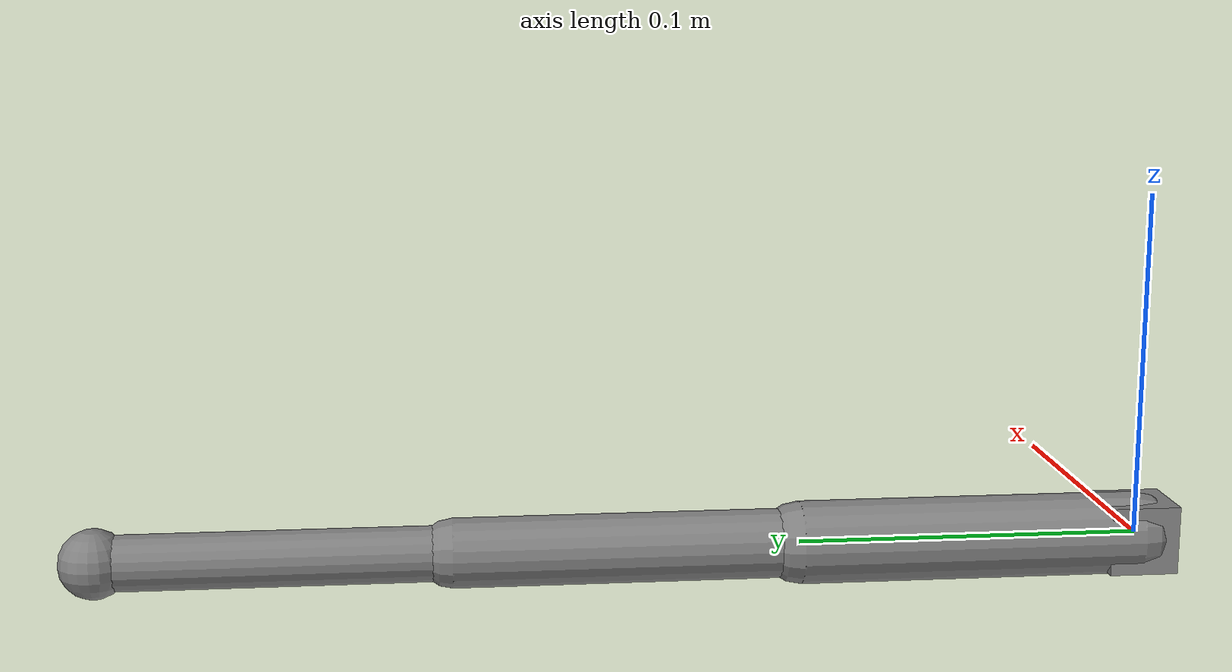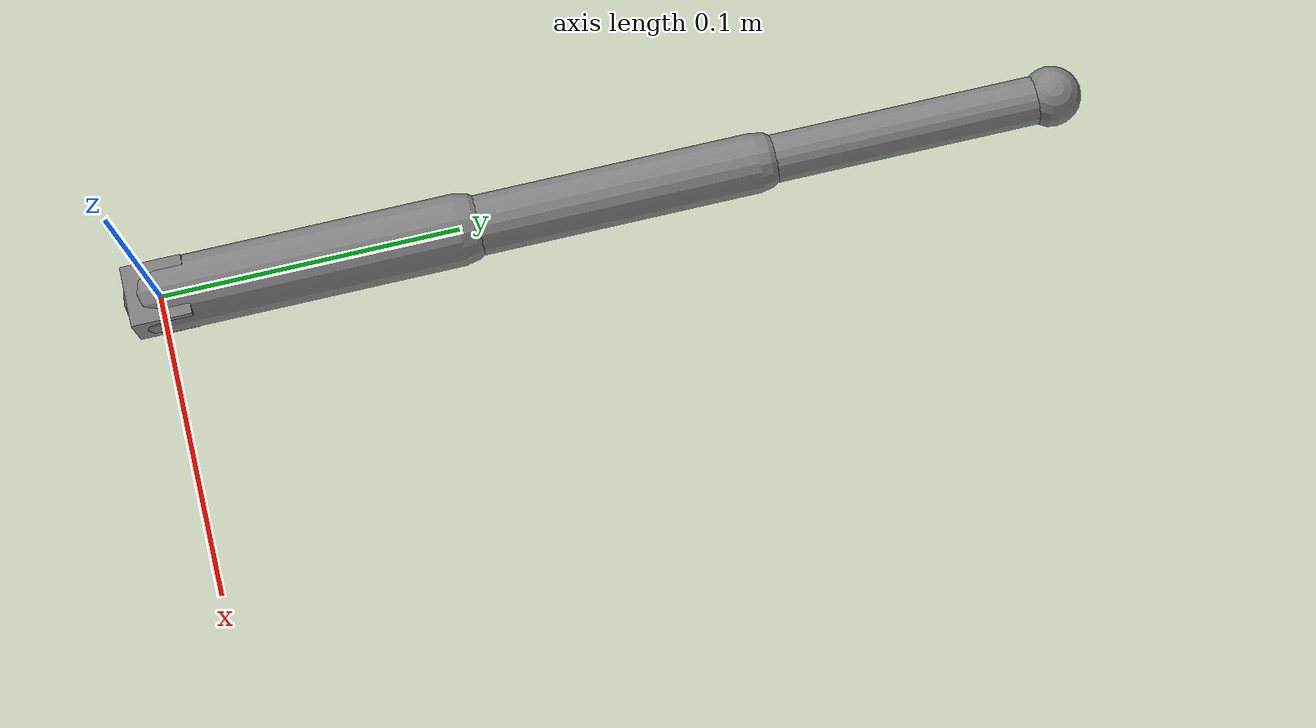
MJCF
<mujoco model="reacher2">
    <compiler inertiafromgeom="true" angle="radian" coordinate="local" />
    <option timestep="0.01" gravity="0 0 0" iterations="20" integrator="Euler" />

    <default>
        <joint armature='0.04' damping="0.1" limited="false"/>
        <geom contype="2" conaffinity="1" condim="1" friction=".5 .1 .1" density="1000" margin="0.002" />
    </default>

    <worldbody>
        <body name="link1" pos="0 0 0">
            <geom name="link1" type="capsule" fromto="0 0 0 0 0.1 0" size="0.012" />
            <joint name="joint1" type="hinge" pos="0 0 0" axis="0 0 1" />

            <body name="link2" pos="0 0.1 0">
                <geom name="link2" type="capsule" fromto="0 0 0 0 0.1 0" size="0.01" />
                <joint name="joint2" type="hinge" pos="0 0 0" axis="0 0 1" limited="true" range="-3 3"/>

                <body name="link3" pos="0 0.1 0">
                    <site name="end_effector" pos="0 0.1 0" size="0.01" />

                    <geom name="link3" type="capsule" fromto="0 0 0 0 0.1 0" size="0.008" />
                    <joint name="joint3" type="hinge" pos="0 0 0" axis="0 0 1" limited="true" range="-3 3"/>
                </body>
            </body>
        </body>

        <body name="target" pos="0 0 0">
            <geom name="target" type="box" size="0.01 0.01 0.01" />
            <site name="target" pos="0 0 0" size="0.01" />
            <joint name="target_joint1" type="slide" pos="0 0 0" axis="1 0 0" />
            <joint name="target_joint2" type="slide" pos="0 0 0" axis="0 1 0" />
        </body>
    </worldbody>

    <actuator>
        <motor joint="joint1" />
        <motor joint="joint2" />
        <motor joint="joint3" />
    </actuator>
</mujoco>
